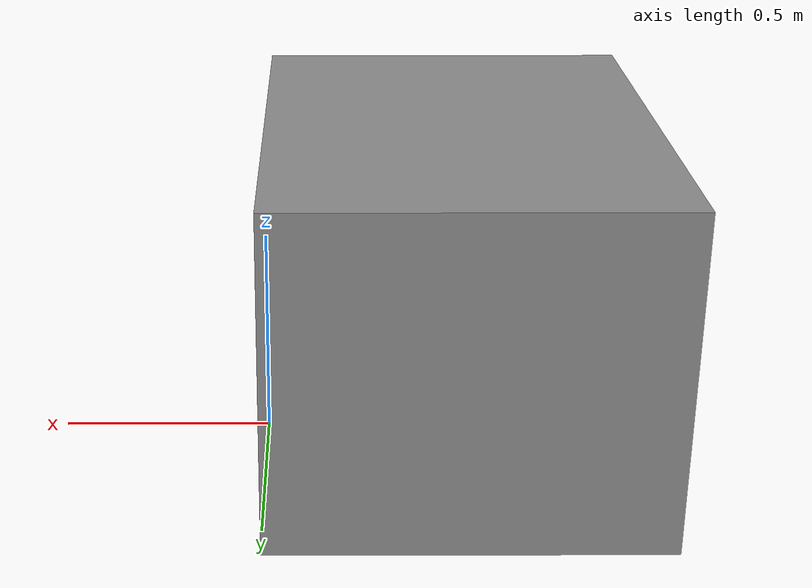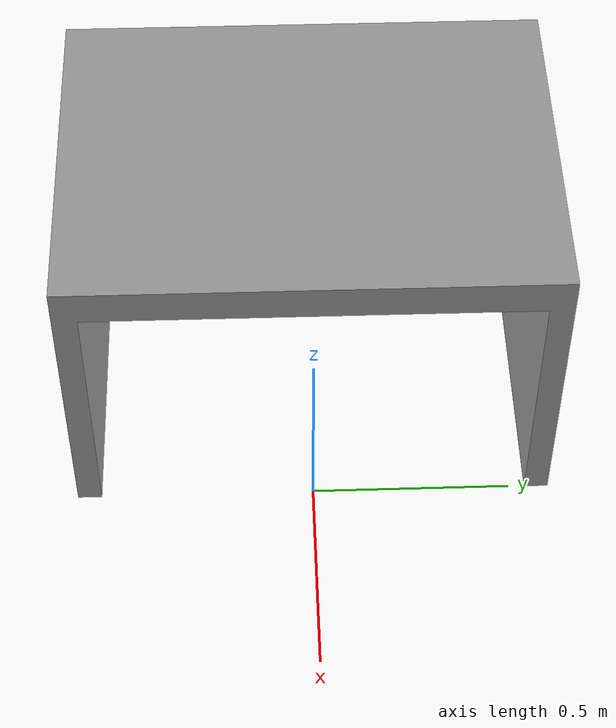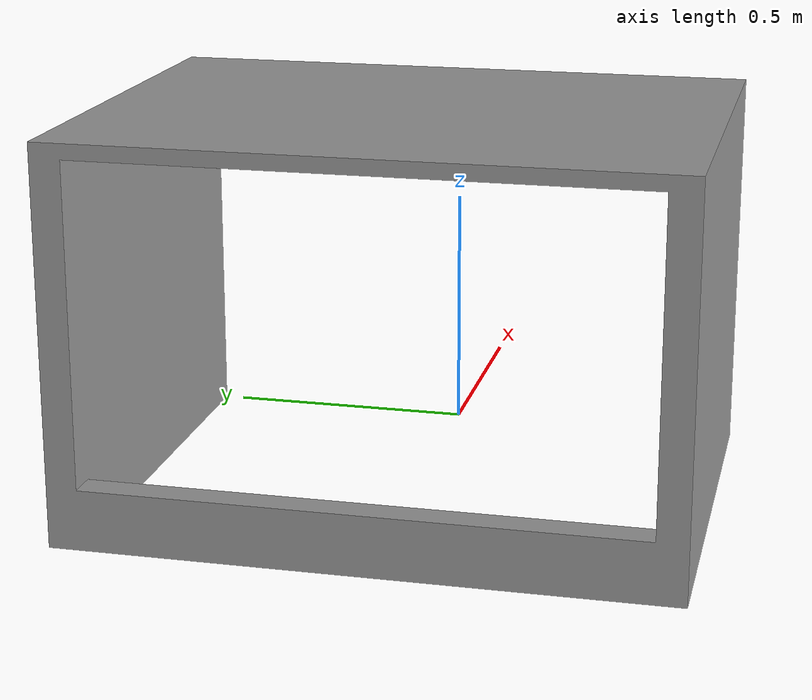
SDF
<?xml version='1.0'?>
<sdf version='1.6'>
  <model name='ur3e_table'>
    <link name='table'>
      <pose frame=''>0 0 0 0 0 3.1415</pose>
      <gravity>1</gravity>
      <inertial>
        <mass>50</mass>
        <inertia>
          <ixx>1</ixx>
          <ixy>0</ixy>
          <ixz>0</ixz>
          <iyy>1</iyy>
          <iyz>0</iyz>
          <izz>1</izz>
        </inertia>
      </inertial>
      <visual name='table_visual'>
        <geometry>
          <mesh>
            <uri>model://ur3e_table/meshes/ur3e_table.stl</uri>
            <scale>1 1 1</scale>
          </mesh>
        </geometry>
        <material>
          <script>
            <name>Gazebo/Grey</name>
            <uri>__default__</uri>
          </script>
        </material>
        <pose frame=''>0 0 0 0 -0 0</pose>
        <transparency>0</transparency>
        <cast_shadows>1</cast_shadows>
      </visual>
      <collision name='table_collision'>
        <laser_retro>0</laser_retro>
        <max_contacts>10</max_contacts>
        <pose frame=''>0 0 0 0 0 0</pose>
        <geometry>
          <mesh>
            <uri>model://ur3e_table/meshes/ur3e_table.stl</uri>
            <scale>1 1 1</scale>
          </mesh>
        </geometry>
        <surface>
          <friction>
            <ode>
              <mu>1</mu>
              <mu2>1</mu2>
              <fdir1>0 0 0</fdir1>
              <slip1>0.1</slip1>
              <slip2>0.1</slip2>
            </ode>
            <torsional>
              <coefficient>1</coefficient>
              <patch_radius>0</patch_radius>
              <surface_radius>0</surface_radius>
              <use_patch_radius>1</use_patch_radius>
              <ode>
                <slip>0</slip>
              </ode>
            </torsional>
          </friction>
          <bounce>
            <restitution_coefficient>0</restitution_coefficient>
            <threshold>1e+06</threshold>
          </bounce>
          <contact>
            <collide_without_contact>0</collide_without_contact>
            <collide_without_contact_bitmask>1</collide_without_contact_bitmask>
            <collide_bitmask>1</collide_bitmask>
            <ode>
              <soft_cfm>0</soft_cfm>
              <soft_erp>0.2</soft_erp>
              <kp>1e+13</kp>
              <kd>1</kd>
              <max_vel>0.01</max_vel>
              <min_depth>0</min_depth>
            </ode>
            <bullet>
              <split_impulse>1</split_impulse>
              <split_impulse_penetration_threshold>-0.01</split_impulse_penetration_threshold>
              <soft_cfm>0</soft_cfm>
              <soft_erp>0.2</soft_erp>
              <kp>1e+13</kp>
              <kd>1</kd>
            </bullet>
          </contact>
        </surface>
      </collision>
    </link>
    <static>1</static>
    <allow_auto_disable>1</allow_auto_disable>
  </model>
</sdf>
